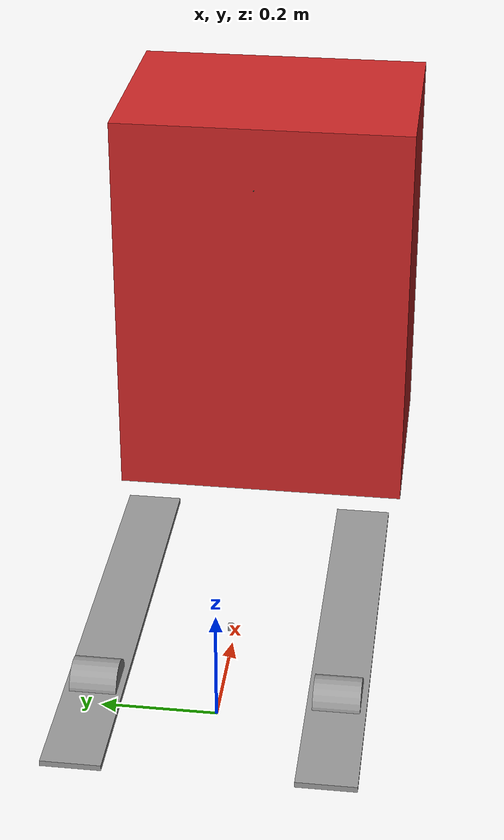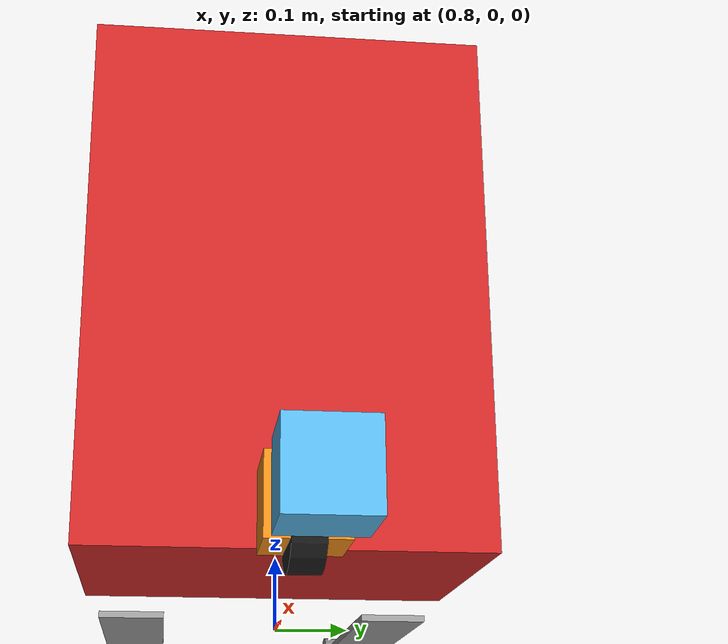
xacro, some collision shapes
<?xml version="1.0"?>

<robot name="cititruck" xmlns:xacro="http://ros.org/wiki/xacro">

    <xacro:arg name="tf_prefix" default="robot_xacro_default"/>
    <xacro:arg name="velodyne" default="false"/>
    <xacro:arg name="kinect2" default="false"/>
    <xacro:arg name="kinect1" default="false"/> <!-- deprecated -->

    <!-- Arguments used in cititruck.gazebo -->
    <xacro:arg name="controller_prefix" default=""/>
    <xacro:arg name="sensor_prefix" default=""/>
    <xacro:arg name="sick_name" default="safety"/>
    <xacro:arg name="ls2000_name" default="nav"/>
    <xacro:arg name="kinect2_name" default="kinect2"/>
    <xacro:arg name="kinect1_name" default="kinect"/>
    <xacro:arg name="use_gpu" default="true"/>

  <!-- Import all Gazebo-customization elements, including Gazebo colors -->
  <xacro:include filename="$(find cititruck_description)/urdf/cititruck.gazebo" />
  <!-- Import Rviz colors -->
  <xacro:include filename="$(find cititruck_description)/urdf/materials.xacro" />

  <xacro:property name="forks_maxeffort" value="1000" />

  <!-- base_footprint is a fictitious link(frame) that is on the ground right below base_link origin, navigation stack dedpends on this frame and KDL needs a root link without any intertia -->
    <link name="base_footprint">
    </link>

    <joint name="base_footprint_joint" type="fixed">
      <origin xyz="0 0 0.050" rpy="0 0 0" />
      <child link="base_link" />
      <parent link="base_footprint"/>
    </joint>

  <!-- Base Link -->
  <link name="base_link">
    <inertial>
      <mass value="20"/>
      <inertia ixx="1" ixy="0" ixz="0" iyy="1" iyz="0" izz="1" />
      <origin/>
    </inertial>
    <visual>
      <origin xyz="0.8 0 0.4" rpy="0 0 0" />
      <geometry>
        <box size="0.4 0.55 0.75" />
      </geometry>
      <material name="red"/>
    </visual>

    <collision>
      <origin xyz="0.8 0 0.1" rpy="0 0 0" />
      <geometry>
        <box size="0.4 0.55 0.005" />
      </geometry>
    </collision>
  </link>

    <link name="left_fork">
      <inertial>
        <mass value="1" />
        <origin xyz="0 0 0.0" />
        <inertia ixx="0.01" ixy="0.0" ixz="0.0"
                 iyy="0.01" iyz="0.0" izz="0.01" />
      </inertial>
      <visual>
        <origin xyz="0 0 0.0" rpy="0 0 0" />
        <geometry>
          <box size="0.8 0.1 0.01" />
        </geometry>

        <material name="grey" />
      </visual>
      <collision>
        <origin xyz="0 0 0.0" rpy="0 0 0" />
        <geometry>
          <box size="0.8 0.1 0.01" />
        </geometry>
	<contact_coefficients mu="1" kp="10.0" kd="10.0"/> -->
      </collision>
    </link>

    <link name="right_fork">
      <inertial>
        <mass value="1" />
        <origin xyz="0 0 0.0" />
        <inertia ixx="0.01" ixy="0.0" ixz="0.0"
                 iyy="0.01" iyz="0.0" izz="0.01" />
      </inertial>
      <visual>
        <origin xyz="0 0 0.0" rpy="0 0 0" />
        <geometry>
          <box size="0.8 0.1 0.01" />
        </geometry>

        <material name="grey" />
      </visual>
      <collision>
        <origin xyz="0 0 0.0" rpy="0 0 0" />
        <geometry>
          <box size="0.8 0.1 0.01" />
        </geometry>
	<contact_coefficients mu="1" kp="10.0" kd="10.0"/> -->
      </collision>
    </link>

    <link name="base_fork">
      <inertial>
        <mass value="0.1" />
        <origin xyz="0 0 0.0" />
        <inertia ixx="0.01" ixy="0.0" ixz="0.0"
                 iyy="0.01" iyz="0.0" izz="0.01" />
      </inertial>
      <visual>
        <origin xyz="0 0 0.0" rpy="0 0 0" />
        <geometry>
          <box size="0.01 0.01 0.01" />
        </geometry>

        <material name="grey" />
      </visual>
    </link>

    <!-- static joint connect the single prismatic joint with the forks... -->
    <joint name="left_fork_joint" type="fixed">
      <origin xyz="0 0.205 0.0" rpy="0 0 0" />
      <child link="left_fork" />
      <parent link="base_fork"/>
    </joint>

    <joint name="right_fork_joint" type="fixed">
      <origin xyz="0 -0.205 0.0" rpy="0 0 0" />
      <child link="right_fork" />
      <parent link="base_fork"/>
    </joint>

    <joint name="fork_joint" type="prismatic">
      <origin xyz="0.18 0.0 0.0" rpy="0 0 0" />
      <parent link="base_link" />
      <child link="base_fork"/>
      <axis xyz="0 0 1" />
      <limit lower="-1" upper="1" effort="1000" velocity="100" />
    </joint>

    <transmission name="fork_trans">
      <type>transmission_interface/SimpleTransmission</type>
      <joint name="fork_joint">
	<hardwareInterface>EffortJointInterface</hardwareInterface>
      </joint>
      <actuator name="fork_motor">
	<hardwareInterface>EffortJointInterface</hardwareInterface>
	<mechanicalReduction>1</mechanicalReduction>
      </actuator>
    </transmission>

      <link name="steer_link">
        <inertial>
          <mass value="0.01"/>
          <inertia ixx="0.001" ixy="0" ixz="0" iyy="0.001" iyz="0" izz="0.001" />
          <origin/>
        </inertial>
        <visual>
          <origin xyz="0 0 0" rpy="0 0 0" />
          <geometry>
            <box size="0.1 0.1 0.1" />
          </geometry>
          <material name="orange"/>
        </visual>
      </link>

      <link name="sd_wheel_link">
        <inertial>
          <mass value="10"/>
          <inertia ixx="0.01" ixy="0" ixz="0" iyy="0.01" iyz="0" izz="0.01" />
          <origin/>
        </inertial>
        <visual>
          <origin xyz="0 0 0" rpy="1.57 0 0" />
          <geometry>
            <cylinder radius="0.08" length="0.04" />
          </geometry>
          <material name="black"/>
        </visual>

        <collision>
          <origin xyz="0 0 0" rpy="1.57 0 0" />
          <geometry>
            <cylinder radius="0.08" length="0.04" />
          </geometry>
        </collision>
      </link>

      <joint name="base2steer_joint" type="revolute">
        <parent link="base_link"/>
        <child link="steer_link"/>
        <limit effort="10000.0" lower="-1.57" upper="1.57" velocity="100"/>
        <origin xyz="1.190 0 0.04" rpy="0 0 0" />
        <axis xyz="0 0 1" />
      </joint>

    <transmission name="base2steer_trans">
      <type>transmission_interface/SimpleTransmission</type>
      <joint name="base2steer_joint">
	<hardwareInterface>EffortJointInterface</hardwareInterface>
      </joint>
      <actuator name="base2steer_motor">
	<hardwareInterface>EffortJointInterface</hardwareInterface>
	<mechanicalReduction>1</mechanicalReduction>
      </actuator>
    </transmission>

      <joint name="steer2sd_wheel_joint" type="continuous">
        <parent link="steer_link"/>
        <child link="sd_wheel_link"/>
        <limit effort="10000.0" velocity="100"/>
        <origin xyz="0 0 0" rpy="0 0 0" />
        <axis xyz="0 1 0" />
      </joint>

    <transmission name="steer2sd_wheel_trans">
      <type>transmission_interface/SimpleTransmission</type>
      <joint name="steer2sd_wheel_joint">
	<hardwareInterface>EffortJointInterface</hardwareInterface>
      </joint>
      <actuator name="steer2sd_wheel_motor">
	<hardwareInterface>EffortJointInterface</hardwareInterface>
	<mechanicalReduction>1</mechanicalReduction>
      </actuator>
    </transmission>

      <link name="fixed_left_wheel_link">
        <inertial>
          <mass value="0.1"/>
          <inertia ixx="0.01" ixy="0" ixz="0" iyy="0.01" iyz="0" izz="0.01" />
          <origin/>
        </inertial>
        <visual>
          <origin xyz="0 0 0" rpy="1.57 0 0" />
          <geometry>
            <cylinder radius="0.04" length="0.08" />
          </geometry>
          <material name="grey"/>
        </visual>

        <collision>
          <origin xyz="0 0 0" rpy="1.57 0 0" />
          <geometry>
            <cylinder radius="0.04" length="0.08" />
          </geometry>
        </collision>
      </link>

      <joint name="base2fixed_left_wheel_joint" type="continuous">
        <parent link="base_link"/>
        <child link="fixed_left_wheel_link"/>
        <origin xyz="0 0.205 0" rpy="0 0 0" />
        <axis xyz="0 1 0" />
      </joint>

      <link name="fixed_right_wheel_link">
        <inertial>
          <mass value="0.1"/>
          <inertia ixx="0.01" ixy="0" ixz="0" iyy="0.01" iyz="0" izz="0.01" />
          <origin/>
        </inertial>
        <visual>
          <origin xyz="0 0 0" rpy="1.57 0 0" />
          <geometry>
            <cylinder radius="0.04" length="0.08" />
          </geometry>
          <material name="grey"/>
        </visual>

        <collision>
          <origin xyz="0 0 0" rpy="1.57 0 0" />
          <geometry>
            <cylinder radius="0.04" length="0.08" />
          </geometry>
        </collision>
      </link>

      <joint name="base2fixed_right_wheel_joint" type="continuous">
        <parent link="base_link"/>
        <child link="fixed_right_wheel_link"/>
        <origin xyz="0 -0.205 0" rpy="0 0 0" />
        <axis xyz="0 1 0" />
      </joint>

      <!-- Sick laser -->
      <link name="laser_link">
	<collision>
	  <origin xyz="0 0 0" rpy="0 0 0"/>
	  <geometry>
	    <box size="0.1 0.1 0.1"/>
	  </geometry>
	</collision>

	<visual>
	  <origin xyz="0 0 0" rpy="0 0 0"/>
	  <geometry>
            <mesh filename="package://cititruck_description/meshes/sick_s300_laser.dae"/>
	  </geometry>
	</visual>

	<inertial>
	  <mass value="1e-5" />
	  <origin xyz="0 0 0" rpy="0 0 0"/>
	  <inertia ixx="1e-6" ixy="0" ixz="0" iyy="1e-6" iyz="0" izz="1e-6" />
	</inertial>
      </link>

      <joint name="laser_joint" type="fixed">
	<axis xyz="0 1 0" />
	<origin xyz="1.4 0 0.02" rpy="3.14159 0 0"/>
	<parent link="base_link"/>
	<child link="laser_link"/>
      </joint>

      <!-- Kinect -->
      <link name="kinect_link">
	<collision>
	  <origin xyz="0 0 0" rpy="0 0 0"/>
	  <geometry>
	    <box size="0.1 0.1 0.1"/>
	  </geometry>
	</collision>

	<visual>
	  <origin xyz="0 0 0" rpy="0 0 0"/>
	  <geometry>
	    <box size="0.001 0.001 0.001"/>
	  </geometry>
	</visual>

	<inertial>
	  <mass value="1e-5" />
	  <origin xyz="0 0 0" rpy="0 0 0"/>
	  <inertia ixx="1e-6" ixy="0" ixz="0" iyy="1e-6" iyz="0" izz="1e-6" />
	</inertial>
      </link>

      <joint name="kinect_joint" type="fixed">
	<axis xyz="0 1 0" />
 	<!--origin xyz="0.5 0 0.7" rpy="${pi/2 + 0.5} 0 ${-pi/2}" /-->
 	<origin xyz="0.5 0 0.7" rpy="0 2.5 0"/>
	<parent link="base_link"/>
	<child link="kinect_link"/>
      </joint>

      <link name="kinect_rgb_optical_link"/>
      <joint name="kinect_optical_joint" type="fixed">
        <axis xyz="0 1 0" />
        <origin xyz="0.0 0.0 0.0" rpy="${-pi/2} 0 ${-pi/2}"/>
        <parent link="kinect_link"/>
        <child link="kinect_rgb_optical_link"/>
      </joint>

</robot>
